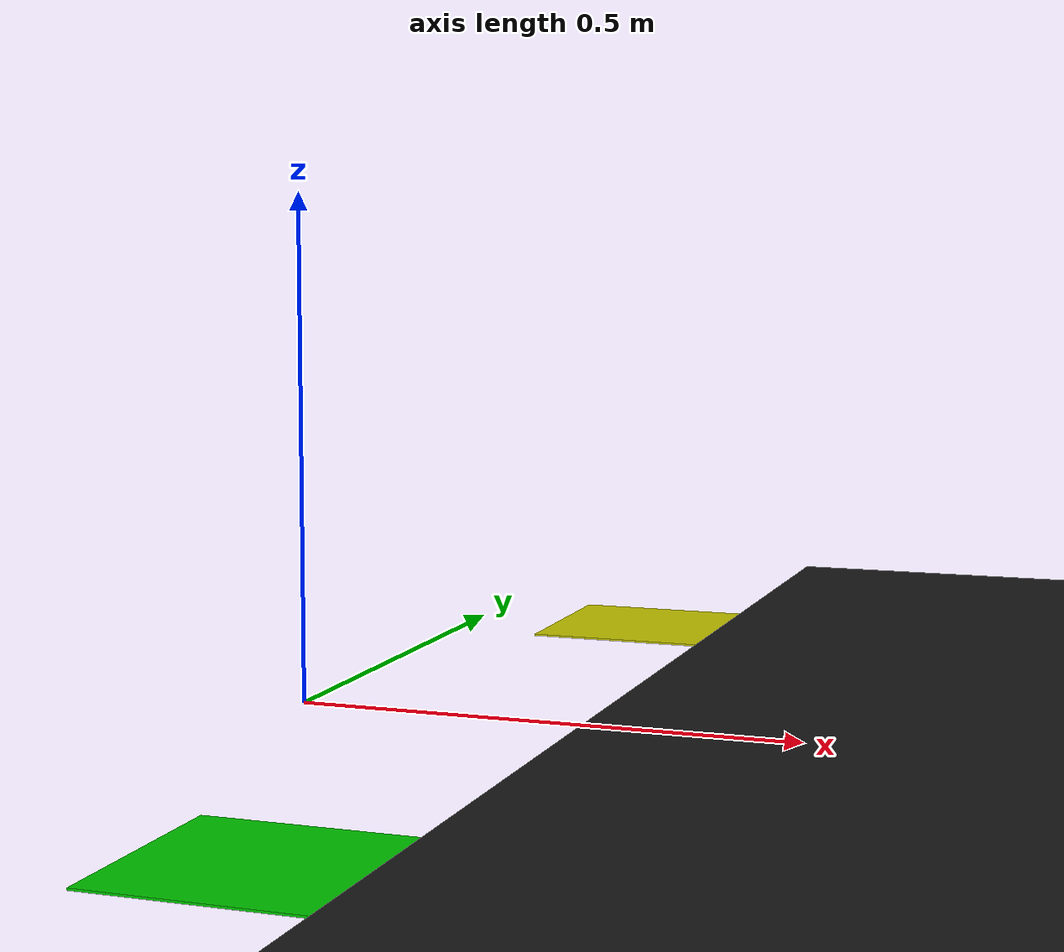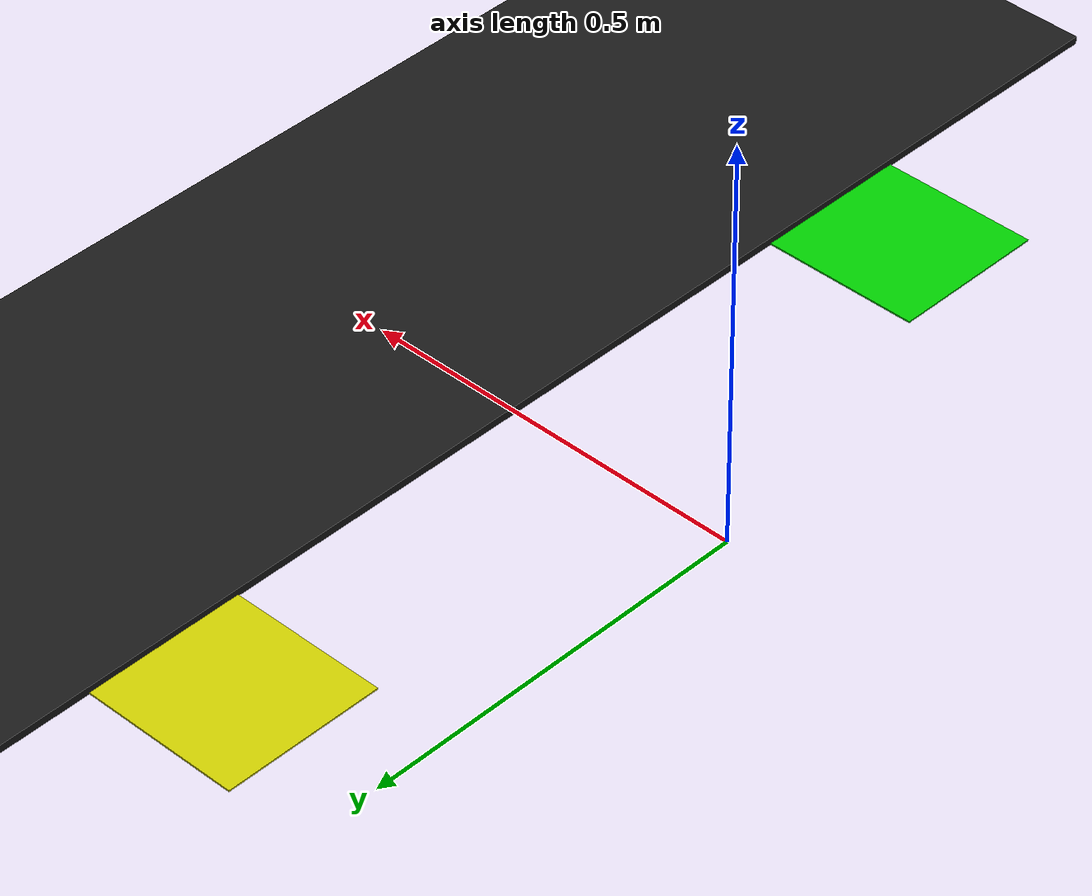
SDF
<?xml version="1.0" ?>
<sdf version="1.8">
  <model name="conveyor_environment">
    <static>true</static>

    <link name="conveyor_link">
      <pose>0.6 0 0.005 0 0 0</pose>
      <visual name="conveyor_visual">
        <geometry>
          <box><size>0.6 3.0 0.01</size></box>
        </geometry>
        <material>
          <ambient>0.1 0.1 0.1 1</ambient>
          <diffuse>0.1 0.1 0.1 1</diffuse>
        </material>
      </visual>
      <collision name="conveyor_collision">
        <geometry>
          <box><size>0.6 3.0 0.01</size></box>
        </geometry>
      </collision>
    </link>

    <link name="pointA_link">
      <pose>0.2 -0.5 0.001 0 0 0</pose>
      <visual name="pointA_visual">
        <geometry><box><size>0.2 0.2 0.002</size></box></geometry>
        <material>
          <ambient>0.0 0.8 0.0 1</ambient> <diffuse>0.0 0.8 0.0 1</diffuse>
        </material>
      </visual>
    </link>

    <link name="pointB_link">
      <pose>0.2 0.5 0.001 0 0 0</pose>
      <visual name="pointB_visual">
        <geometry><box><size>0.2 0.2 0.002</size></box></geometry>
        <material>
          <ambient>0.8 0.8 0.0 1</ambient> <diffuse>0.8 0.8 0.0 1</diffuse>
        </material>
      </visual>
    </link>
  </model>
</sdf>
